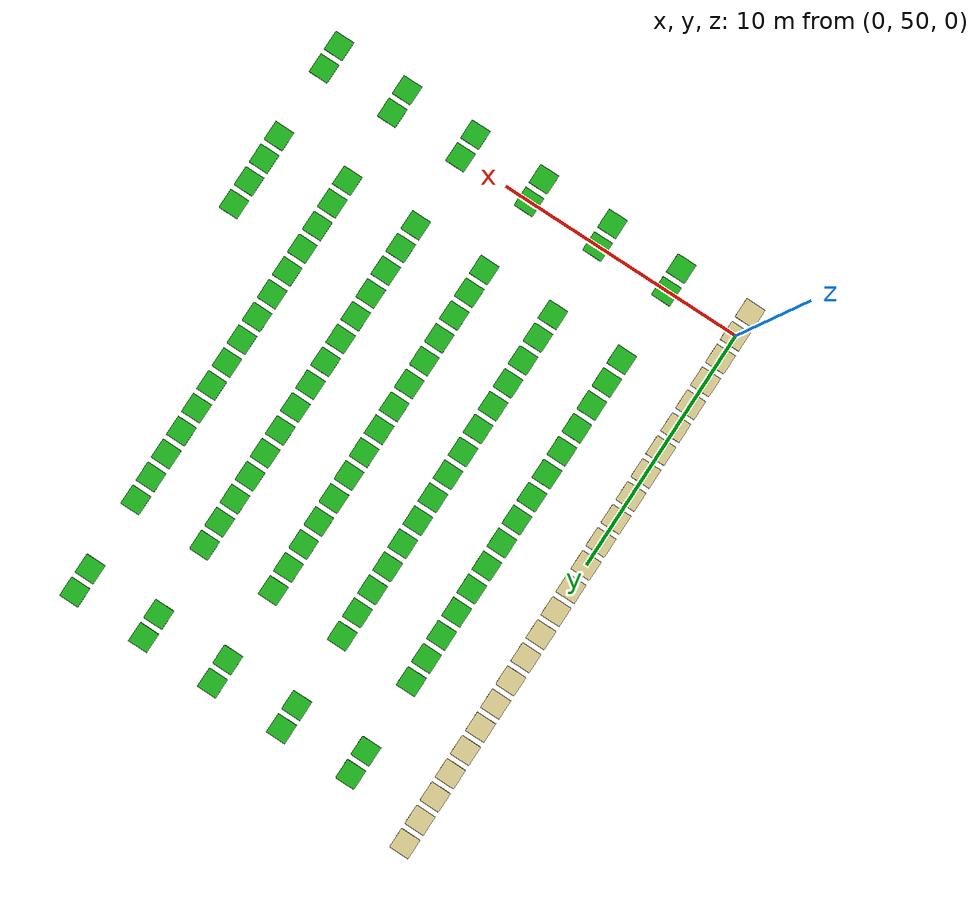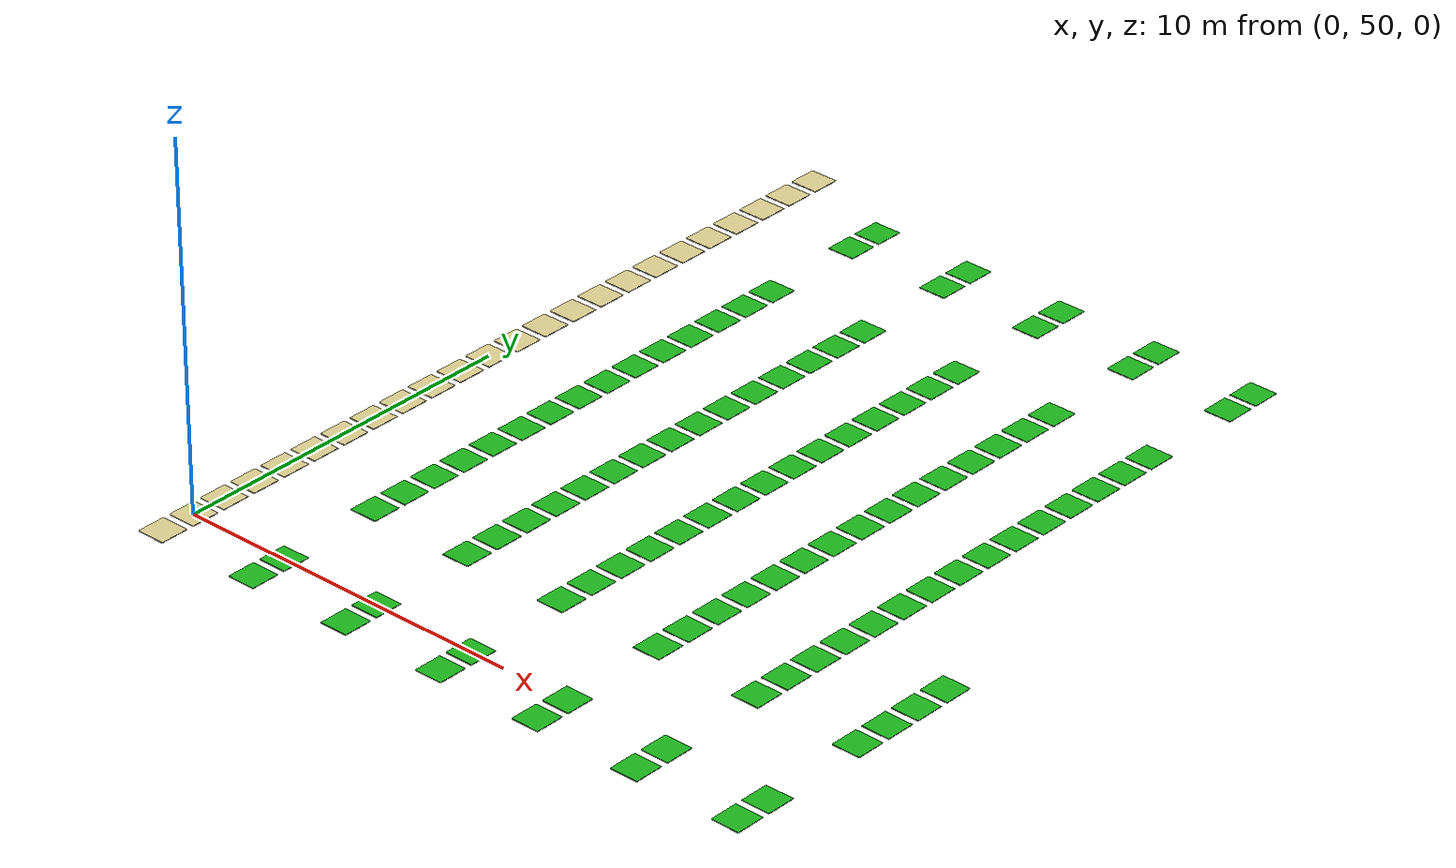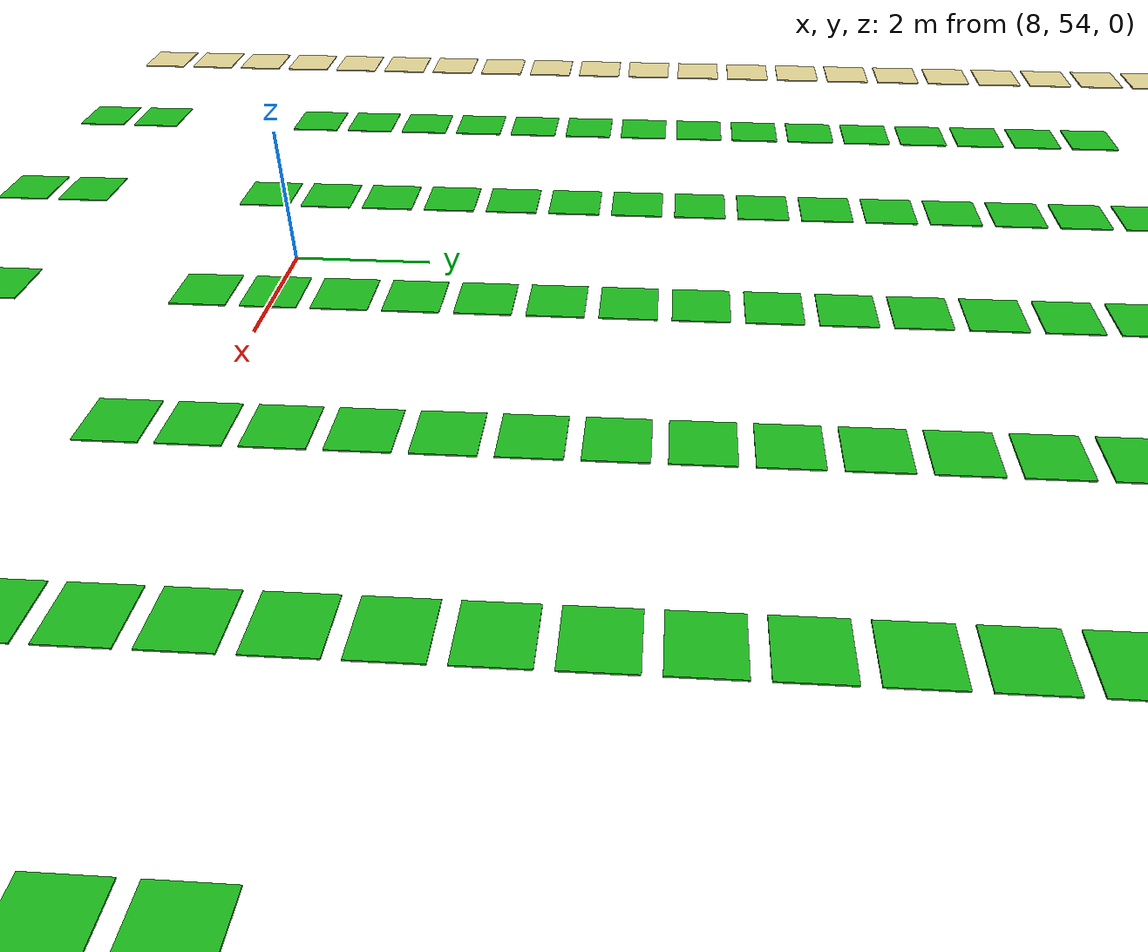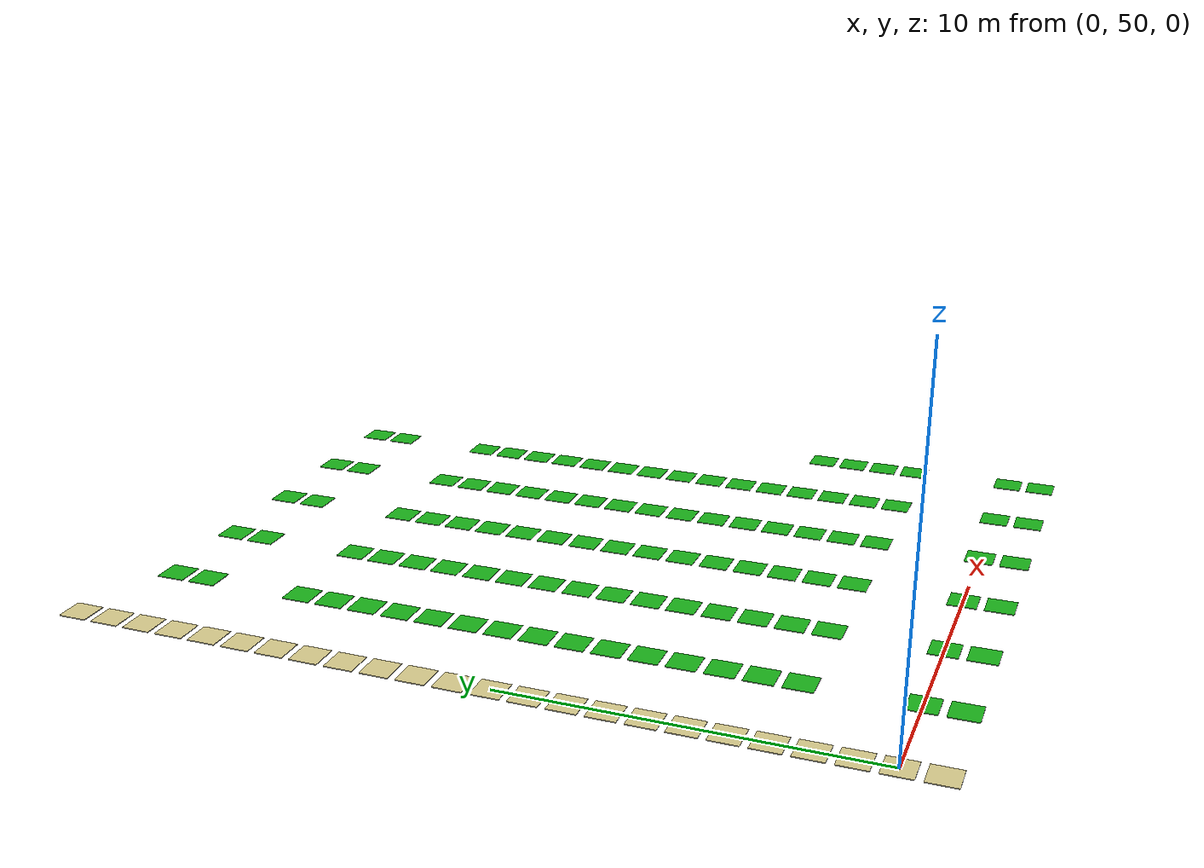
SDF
<sdf version="1.10">
 <world name="my_map">
  <model name="staging_059">
   <static>true</static>
   <pose>0.0
        72.0
        0.02
        0 0 0</pose>
   <link name="link">
    <visual name="visual">
     <geometry><box><size>0.8
                0.8
                0.02</size></box></geometry>
     <material><ambient>0.85 0.80 0.55 1</ambient><diffuse>0.85 0.80 0.55 1</diffuse></material>
    </visual>
   </link>
  </model>
  <model name="staging_061">
   <static>true</static>
   <pose>0.0
        71.0
        0.02
        0 0 0</pose>
   <link name="link">
    <visual name="visual">
     <geometry><box><size>0.8
                0.8
                0.02</size></box></geometry>
     <material><ambient>0.85 0.80 0.55 1</ambient><diffuse>0.85 0.80 0.55 1</diffuse></material>
    </visual>
   </link>
  </model>
  <model name="shelf_701">
   <static>true</static>
   <pose>3.0
        71.0
        0.02
        0 0 0</pose>
   <link name="link">
    <visual name="visual">
     <geometry><box><size>0.8
                0.8
                0.02</size></box></geometry>
     <material><ambient>0.10 0.70 0.10 1</ambient><diffuse>0.10 0.70 0.10 1</diffuse></material>
    </visual>
   </link>
  </model>
  <model name="shelf_702">
   <static>true</static>
   <pose>6.0
        71.0
        0.02
        0 0 0</pose>
   <link name="link">
    <visual name="visual">
     <geometry><box><size>0.8
                0.8
                0.02</size></box></geometry>
     <material><ambient>0.10 0.70 0.10 1</ambient><diffuse>0.10 0.70 0.10 1</diffuse></material>
    </visual>
   </link>
  </model>
  <model name="shelf_703">
   <static>true</static>
   <pose>9.0
        71.0
        0.02
        0 0 0</pose>
   <link name="link">
    <visual name="visual">
     <geometry><box><size>0.8
                0.8
                0.02</size></box></geometry>
     <material><ambient>0.10 0.70 0.10 1</ambient><diffuse>0.10 0.70 0.10 1</diffuse></material>
    </visual>
   </link>
  </model>
  <model name="shelf_704">
   <static>true</static>
   <pose>12.0
        71.0
        0.02
        0 0 0</pose>
   <link name="link">
    <visual name="visual">
     <geometry><box><size>0.8
                0.8
                0.02</size></box></geometry>
     <material><ambient>0.10 0.70 0.10 1</ambient><diffuse>0.10 0.70 0.10 1</diffuse></material>
    </visual>
   </link>
  </model>
  <model name="shelf_705">
   <static>true</static>
   <pose>15.0
        71.0
        0.02
        0 0 0</pose>
   <link name="link">
    <visual name="visual">
     <geometry><box><size>0.8
                0.8
                0.02</size></box></geometry>
     <material><ambient>0.10 0.70 0.10 1</ambient><diffuse>0.10 0.70 0.10 1</diffuse></material>
    </visual>
   </link>
  </model>
  <model name="staging_063">
   <static>true</static>
   <pose>0.0
        70.0
        0.02
        0 0 0</pose>
   <link name="link">
    <visual name="visual">
     <geometry><box><size>0.8
                0.8
                0.02</size></box></geometry>
     <material><ambient>0.85 0.80 0.55 1</ambient><diffuse>0.85 0.80 0.55 1</diffuse></material>
    </visual>
   </link>
  </model>
  <model name="shelf_726">
   <static>true</static>
   <pose>3.0
        70.0
        0.02
        0 0 0</pose>
   <link name="link">
    <visual name="visual">
     <geometry><box><size>0.8
                0.8
                0.02</size></box></geometry>
     <material><ambient>0.10 0.70 0.10 1</ambient><diffuse>0.10 0.70 0.10 1</diffuse></material>
    </visual>
   </link>
  </model>
  <model name="shelf_727">
   <static>true</static>
   <pose>6.0
        70.0
        0.02
        0 0 0</pose>
   <link name="link">
    <visual name="visual">
     <geometry><box><size>0.8
                0.8
                0.02</size></box></geometry>
     <material><ambient>0.10 0.70 0.10 1</ambient><diffuse>0.10 0.70 0.10 1</diffuse></material>
    </visual>
   </link>
  </model>
  <model name="shelf_728">
   <static>true</static>
   <pose>9.0
        70.0
        0.02
        0 0 0</pose>
   <link name="link">
    <visual name="visual">
     <geometry><box><size>0.8
                0.8
                0.02</size></box></geometry>
     <material><ambient>0.10 0.70 0.10 1</ambient><diffuse>0.10 0.70 0.10 1</diffuse></material>
    </visual>
   </link>
  </model>
  <model name="shelf_729">
   <static>true</static>
   <pose>12.0
        70.0
        0.02
        0 0 0</pose>
   <link name="link">
    <visual name="visual">
     <geometry><box><size>0.8
                0.8
                0.02</size></box></geometry>
     <material><ambient>0.10 0.70 0.10 1</ambient><diffuse>0.10 0.70 0.10 1</diffuse></material>
    </visual>
   </link>
  </model>
  <model name="shelf_730">
   <static>true</static>
   <pose>15.0
        70.0
        0.02
        0 0 0</pose>
   <link name="link">
    <visual name="visual">
     <geometry><box><size>0.8
                0.8
                0.02</size></box></geometry>
     <material><ambient>0.10 0.70 0.10 1</ambient><diffuse>0.10 0.70 0.10 1</diffuse></material>
    </visual>
   </link>
  </model>
  <model name="staging_065">
   <static>true</static>
   <pose>0.0
        69.0
        0.02
        0 0 0</pose>
   <link name="link">
    <visual name="visual">
     <geometry><box><size>0.8
                0.8
                0.02</size></box></geometry>
     <material><ambient>0.85 0.80 0.55 1</ambient><diffuse>0.85 0.80 0.55 1</diffuse></material>
    </visual>
   </link>
  </model>
  <model name="staging_067">
   <static>true</static>
   <pose>0.0
        68.0
        0.02
        0 0 0</pose>
   <link name="link">
    <visual name="visual">
     <geometry><box><size>0.8
                0.8
                0.02</size></box></geometry>
     <material><ambient>0.85 0.80 0.55 1</ambient><diffuse>0.85 0.80 0.55 1</diffuse></material>
    </visual>
   </link>
  </model>
  <model name="staging_069">
   <static>true</static>
   <pose>0.0
        67.0
        0.02
        0 0 0</pose>
   <link name="link">
    <visual name="visual">
     <geometry><box><size>0.8
                0.8
                0.02</size></box></geometry>
     <material><ambient>0.85 0.80 0.55 1</ambient><diffuse>0.85 0.80 0.55 1</diffuse></material>
    </visual>
   </link>
  </model>
  <model name="shelf_751">
   <static>true</static>
   <pose>3.0
        67.0
        0.02
        0 0 0</pose>
   <link name="link">
    <visual name="visual">
     <geometry><box><size>0.8
                0.8
                0.02</size></box></geometry>
     <material><ambient>0.10 0.70 0.10 1</ambient><diffuse>0.10 0.70 0.10 1</diffuse></material>
    </visual>
   </link>
  </model>
  <model name="shelf_752">
   <static>true</static>
   <pose>6.0
        67.0
        0.02
        0 0 0</pose>
   <link name="link">
    <visual name="visual">
     <geometry><box><size>0.8
                0.8
                0.02</size></box></geometry>
     <material><ambient>0.10 0.70 0.10 1</ambient><diffuse>0.10 0.70 0.10 1</diffuse></material>
    </visual>
   </link>
  </model>
  <model name="shelf_753">
   <static>true</static>
   <pose>9.0
        67.0
        0.02
        0 0 0</pose>
   <link name="link">
    <visual name="visual">
     <geometry><box><size>0.8
                0.8
                0.02</size></box></geometry>
     <material><ambient>0.10 0.70 0.10 1</ambient><diffuse>0.10 0.70 0.10 1</diffuse></material>
    </visual>
   </link>
  </model>
  <model name="shelf_754">
   <static>true</static>
   <pose>12.0
        67.0
        0.02
        0 0 0</pose>
   <link name="link">
    <visual name="visual">
     <geometry><box><size>0.8
                0.8
                0.02</size></box></geometry>
     <material><ambient>0.10 0.70 0.10 1</ambient><diffuse>0.10 0.70 0.10 1</diffuse></material>
    </visual>
   </link>
  </model>
  <model name="shelf_755">
   <static>true</static>
   <pose>15.0
        67.0
        0.02
        0 0 0</pose>
   <link name="link">
    <visual name="visual">
     <geometry><box><size>0.8
                0.8
                0.02</size></box></geometry>
     <material><ambient>0.10 0.70 0.10 1</ambient><diffuse>0.10 0.70 0.10 1</diffuse></material>
    </visual>
   </link>
  </model>
  <model name="staging_071">
   <static>true</static>
   <pose>0.0
        66.0
        0.02
        0 0 0</pose>
   <link name="link">
    <visual name="visual">
     <geometry><box><size>0.8
                0.8
                0.02</size></box></geometry>
     <material><ambient>0.85 0.80 0.55 1</ambient><diffuse>0.85 0.80 0.55 1</diffuse></material>
    </visual>
   </link>
  </model>
  <model name="shelf_776">
   <static>true</static>
   <pose>3.0
        66.0
        0.02
        0 0 0</pose>
   <link name="link">
    <visual name="visual">
     <geometry><box><size>0.8
                0.8
                0.02</size></box></geometry>
     <material><ambient>0.10 0.70 0.10 1</ambient><diffuse>0.10 0.70 0.10 1</diffuse></material>
    </visual>
   </link>
  </model>
  <model name="shelf_777">
   <static>true</static>
   <pose>6.0
        66.0
        0.02
        0 0 0</pose>
   <link name="link">
    <visual name="visual">
     <geometry><box><size>0.8
                0.8
                0.02</size></box></geometry>
     <material><ambient>0.10 0.70 0.10 1</ambient><diffuse>0.10 0.70 0.10 1</diffuse></material>
    </visual>
   </link>
  </model>
  <model name="shelf_778">
   <static>true</static>
   <pose>9.0
        66.0
        0.02
        0 0 0</pose>
   <link name="link">
    <visual name="visual">
     <geometry><box><size>0.8
                0.8
                0.02</size></box></geometry>
     <material><ambient>0.10 0.70 0.10 1</ambient><diffuse>0.10 0.70 0.10 1</diffuse></material>
    </visual>
   </link>
  </model>
  <model name="shelf_779">
   <static>true</static>
   <pose>12.0
        66.0
        0.02
        0 0 0</pose>
   <link name="link">
    <visual name="visual">
     <geometry><box><size>0.8
                0.8
                0.02</size></box></geometry>
     <material><ambient>0.10 0.70 0.10 1</ambient><diffuse>0.10 0.70 0.10 1</diffuse></material>
    </visual>
   </link>
  </model>
  <model name="shelf_780">
   <static>true</static>
   <pose>15.0
        66.0
        0.02
        0 0 0</pose>
   <link name="link">
    <visual name="visual">
     <geometry><box><size>0.8
                0.8
                0.02</size></box></geometry>
     <material><ambient>0.10 0.70 0.10 1</ambient><diffuse>0.10 0.70 0.10 1</diffuse></material>
    </visual>
   </link>
  </model>
  <model name="staging_073">
   <static>true</static>
   <pose>0.0
        65.0
        0.02
        0 0 0</pose>
   <link name="link">
    <visual name="visual">
     <geometry><box><size>0.8
                0.8
                0.02</size></box></geometry>
     <material><ambient>0.85 0.80 0.55 1</ambient><diffuse>0.85 0.80 0.55 1</diffuse></material>
    </visual>
   </link>
  </model>
  <model name="shelf_801">
   <static>true</static>
   <pose>3.0
        65.0
        0.02
        0 0 0</pose>
   <link name="link">
    <visual name="visual">
     <geometry><box><size>0.8
                0.8
                0.02</size></box></geometry>
     <material><ambient>0.10 0.70 0.10 1</ambient><diffuse>0.10 0.70 0.10 1</diffuse></material>
    </visual>
   </link>
  </model>
  <model name="shelf_802">
   <static>true</static>
   <pose>6.0
        65.0
        0.02
        0 0 0</pose>
   <link name="link">
    <visual name="visual">
     <geometry><box><size>0.8
                0.8
                0.02</size></box></geometry>
     <material><ambient>0.10 0.70 0.10 1</ambient><diffuse>0.10 0.70 0.10 1</diffuse></material>
    </visual>
   </link>
  </model>
  <model name="shelf_803">
   <static>true</static>
   <pose>9.0
        65.0
        0.02
        0 0 0</pose>
   <link name="link">
    <visual name="visual">
     <geometry><box><size>0.8
                0.8
                0.02</size></box></geometry>
     <material><ambient>0.10 0.70 0.10 1</ambient><diffuse>0.10 0.70 0.10 1</diffuse></material>
    </visual>
   </link>
  </model>
  <model name="shelf_804">
   <static>true</static>
   <pose>12.0
        65.0
        0.02
        0 0 0</pose>
   <link name="link">
    <visual name="visual">
     <geometry><box><size>0.8
                0.8
                0.02</size></box></geometry>
     <material><ambient>0.10 0.70 0.10 1</ambient><diffuse>0.10 0.70 0.10 1</diffuse></material>
    </visual>
   </link>
  </model>
  <model name="shelf_805">
   <static>true</static>
   <pose>15.0
        65.0
        0.02
        0 0 0</pose>
   <link name="link">
    <visual name="visual">
     <geometry><box><size>0.8
                0.8
                0.02</size></box></geometry>
     <material><ambient>0.10 0.70 0.10 1</ambient><diffuse>0.10 0.70 0.10 1</diffuse></material>
    </visual>
   </link>
  </model>
  <model name="staging_075">
   <static>true</static>
   <pose>0.0
        64.0
        0.02
        0 0 0</pose>
   <link name="link">
    <visual name="visual">
     <geometry><box><size>0.8
                0.8
                0.02</size></box></geometry>
     <material><ambient>0.85 0.80 0.55 1</ambient><diffuse>0.85 0.80 0.55 1</diffuse></material>
    </visual>
   </link>
  </model>
  <model name="shelf_826">
   <static>true</static>
   <pose>3.0
        64.0
        0.02
        0 0 0</pose>
   <link name="link">
    <visual name="visual">
     <geometry><box><size>0.8
                0.8
                0.02</size></box></geometry>
     <material><ambient>0.10 0.70 0.10 1</ambient><diffuse>0.10 0.70 0.10 1</diffuse></material>
    </visual>
   </link>
  </model>
  <model name="shelf_827">
   <static>true</static>
   <pose>6.0
        64.0
        0.02
        0 0 0</pose>
   <link name="link">
    <visual name="visual">
     <geometry><box><size>0.8
                0.8
                0.02</size></box></geometry>
     <material><ambient>0.10 0.70 0.10 1</ambient><diffuse>0.10 0.70 0.10 1</diffuse></material>
    </visual>
   </link>
  </model>
  <model name="shelf_828">
   <static>true</static>
   <pose>9.0
        64.0
        0.02
        0 0 0</pose>
   <link name="link">
    <visual name="visual">
     <geometry><box><size>0.8
                0.8
                0.02</size></box></geometry>
     <material><ambient>0.10 0.70 0.10 1</ambient><diffuse>0.10 0.70 0.10 1</diffuse></material>
    </visual>
   </link>
  </model>
  <model name="shelf_829">
   <static>true</static>
   <pose>12.0
        64.0
        0.02
        0 0 0</pose>
   <link name="link">
    <visual name="visual">
     <geometry><box><size>0.8
                0.8
                0.02</size></box></geometry>
     <material><ambient>0.10 0.70 0.10 1</ambient><diffuse>0.10 0.70 0.10 1</diffuse></material>
    </visual>
   </link>
  </model>
  <model name="shelf_830">
   <static>true</static>
   <pose>15.0
        64.0
        0.02
        0 0 0</pose>
   <link name="link">
    <visual name="visual">
     <geometry><box><size>0.8
                0.8
                0.02</size></box></geometry>
     <material><ambient>0.10 0.70 0.10 1</ambient><diffuse>0.10 0.70 0.10 1</diffuse></material>
    </visual>
   </link>
  </model>
  <model name="staging_077">
   <static>true</static>
   <pose>0.0
        63.0
        0.02
        0 0 0</pose>
   <link name="link">
    <visual name="visual">
     <geometry><box><size>0.8
                0.8
                0.02</size></box></geometry>
     <material><ambient>0.85 0.80 0.55 1</ambient><diffuse>0.85 0.80 0.55 1</diffuse></material>
    </visual>
   </link>
  </model>
  <model name="shelf_851">
   <static>true</static>
   <pose>3.0
        63.0
        0.02
        0 0 0</pose>
   <link name="link">
    <visual name="visual">
     <geometry><box><size>0.8
                0.8
                0.02</size></box></geometry>
     <material><ambient>0.10 0.70 0.10 1</ambient><diffuse>0.10 0.70 0.10 1</diffuse></material>
    </visual>
   </link>
  </model>
  <model name="shelf_852">
   <static>true</static>
   <pose>6.0
        63.0
        0.02
        0 0 0</pose>
   <link name="link">
    <visual name="visual">
     <geometry><box><size>0.8
                0.8
                0.02</size></box></geometry>
     <material><ambient>0.10 0.70 0.10 1</ambient><diffuse>0.10 0.70 0.10 1</diffuse></material>
    </visual>
   </link>
  </model>
  <model name="shelf_853">
   <static>true</static>
   <pose>9.0
        63.0
        0.02
        0 0 0</pose>
   <link name="link">
    <visual name="visual">
     <geometry><box><size>0.8
                0.8
                0.02</size></box></geometry>
     <material><ambient>0.10 0.70 0.10 1</ambient><diffuse>0.10 0.70 0.10 1</diffuse></material>
    </visual>
   </link>
  </model>
  <model name="shelf_854">
   <static>true</static>
   <pose>12.0
        63.0
        0.02
        0 0 0</pose>
   <link name="link">
    <visual name="visual">
     <geometry><box><size>0.8
                0.8
                0.02</size></box></geometry>
     <material><ambient>0.10 0.70 0.10 1</ambient><diffuse>0.10 0.70 0.10 1</diffuse></material>
    </visual>
   </link>
  </model>
  <model name="shelf_855">
   <static>true</static>
   <pose>15.0
        63.0
        0.02
        0 0 0</pose>
   <link name="link">
    <visual name="visual">
     <geometry><box><size>0.8
                0.8
                0.02</size></box></geometry>
     <material><ambient>0.10 0.70 0.10 1</ambient><diffuse>0.10 0.70 0.10 1</diffuse></material>
    </visual>
   </link>
  </model>
  <model name="staging_079">
   <static>true</static>
   <pose>0.0
        62.0
        0.02
        0 0 0</pose>
   <link name="link">
    <visual name="visual">
     <geometry><box><size>0.8
                0.8
                0.02</size></box></geometry>
     <material><ambient>0.85 0.80 0.55 1</ambient><diffuse>0.85 0.80 0.55 1</diffuse></material>
    </visual>
   </link>
  </model>
  <model name="shelf_876">
   <static>true</static>
   <pose>3.0
        62.0
        0.02
        0 0 0</pose>
   <link name="link">
    <visual name="visual">
     <geometry><box><size>0.8
                0.8
                0.02</size></box></geometry>
     <material><ambient>0.10 0.70 0.10 1</ambient><diffuse>0.10 0.70 0.10 1</diffuse></material>
    </visual>
   </link>
  </model>
  <model name="shelf_877">
   <static>true</static>
   <pose>6.0
        62.0
        0.02
        0 0 0</pose>
   <link name="link">
    <visual name="visual">
     <geometry><box><size>0.8
                0.8
                0.02</size></box></geometry>
     <material><ambient>0.10 0.70 0.10 1</ambient><diffuse>0.10 0.70 0.10 1</diffuse></material>
    </visual>
   </link>
  </model>
  <model name="shelf_878">
   <static>true</static>
   <pose>9.0
        62.0
        0.02
        0 0 0</pose>
   <link name="link">
    <visual name="visual">
     <geometry><box><size>0.8
                0.8
                0.02</size></box></geometry>
     <material><ambient>0.10 0.70 0.10 1</ambient><diffuse>0.10 0.70 0.10 1</diffuse></material>
    </visual>
   </link>
  </model>
  <model name="shelf_879">
   <static>true</static>
   <pose>12.0
        62.0
        0.02
        0 0 0</pose>
   <link name="link">
    <visual name="visual">
     <geometry><box><size>0.8
                0.8
                0.02</size></box></geometry>
     <material><ambient>0.10 0.70 0.10 1</ambient><diffuse>0.10 0.70 0.10 1</diffuse></material>
    </visual>
   </link>
  </model>
  <model name="shelf_880">
   <static>true</static>
   <pose>15.0
        62.0
        0.02
        0 0 0</pose>
   <link name="link">
    <visual name="visual">
     <geometry><box><size>0.8
                0.8
                0.02</size></box></geometry>
     <material><ambient>0.10 0.70 0.10 1</ambient><diffuse>0.10 0.70 0.10 1</diffuse></material>
    </visual>
   </link>
  </model>
  <model name="staging_081">
   <static>true</static>
   <pose>0.0
        61.0
        0.02
        0 0 0</pose>
   <link name="link">
    <visual name="visual">
     <geometry><box><size>0.8
                0.8
                0.02</size></box></geometry>
     <material><ambient>0.85 0.80 0.55 1</ambient><diffuse>0.85 0.80 0.55 1</diffuse></material>
    </visual>
   </link>
  </model>
  <model name="shelf_901">
   <static>true</static>
   <pose>3.0
        61.0
        0.02
        0 0 0</pose>
   <link name="link">
    <visual name="visual">
     <geometry><box><size>0.8
                0.8
                0.02</size></box></geometry>
     <material><ambient>0.10 0.70 0.10 1</ambient><diffuse>0.10 0.70 0.10 1</diffuse></material>
    </visual>
   </link>
  </model>
  <model name="shelf_902">
   <static>true</static>
   <pose>6.0
        61.0
        0.02
        0 0 0</pose>
   <link name="link">
    <visual name="visual">
     <geometry><box><size>0.8
                0.8
                0.02</size></box></geometry>
     <material><ambient>0.10 0.70 0.10 1</ambient><diffuse>0.10 0.70 0.10 1</diffuse></material>
    </visual>
   </link>
  </model>
  <model name="shelf_903">
   <static>true</static>
   <pose>9.0
        61.0
        0.02
        0 0 0</pose>
   <link name="link">
    <visual name="visual">
     <geometry><box><size>0.8
                0.8
                0.02</size></box></geometry>
     <material><ambient>0.10 0.70 0.10 1</ambient><diffuse>0.10 0.70 0.10 1</diffuse></material>
    </visual>
   </link>
  </model>
  <model name="shelf_904">
   <static>true</static>
   <pose>12.0
        61.0
        0.02
        0 0 0</pose>
   <link name="link">
    <visual name="visual">
     <geometry><box><size>0.8
                0.8
                0.02</size></box></geometry>
     <material><ambient>0.10 0.70 0.10 1</ambient><diffuse>0.10 0.70 0.10 1</diffuse></material>
    </visual>
   </link>
  </model>
  <model name="shelf_905">
   <static>true</static>
   <pose>15.0
        61.0
        0.02
        0 0 0</pose>
   <link name="link">
    <visual name="visual">
     <geometry><box><size>0.8
                0.8
                0.02</size></box></geometry>
     <material><ambient>0.10 0.70 0.10 1</ambient><diffuse>0.10 0.70 0.10 1</diffuse></material>
    </visual>
   </link>
  </model>
  <model name="staging_083">
   <static>true</static>
   <pose>0.0
        60.0
        0.02
        0 0 0</pose>
   <link name="link">
    <visual name="visual">
     <geometry><box><size>0.8
                0.8
                0.02</size></box></geometry>
     <material><ambient>0.85 0.80 0.55 1</ambient><diffuse>0.85 0.80 0.55 1</diffuse></material>
    </visual>
   </link>
  </model>
  <model name="shelf_926">
   <static>true</static>
   <pose>3.0
        60.0
        0.02
        0 0 0</pose>
   <link name="link">
    <visual name="visual">
     <geometry><box><size>0.8
                0.8
                0.02</size></box></geometry>
     <material><ambient>0.10 0.70 0.10 1</ambient><diffuse>0.10 0.70 0.10 1</diffuse></material>
    </visual>
   </link>
  </model>
  <model name="shelf_927">
   <static>true</static>
   <pose>6.0
        60.0
        0.02
        0 0 0</pose>
   <link name="link">
    <visual name="visual">
     <geometry><box><size>0.8
                0.8
                0.02</size></box></geometry>
     <material><ambient>0.10 0.70 0.10 1</ambient><diffuse>0.10 0.70 0.10 1</diffuse></material>
    </visual>
   </link>
  </model>
  <model name="shelf_928">
   <static>true</static>
   <pose>9.0
        60.0
        0.02
        0 0 0</pose>
   <link name="link">
    <visual name="visual">
     <geometry><box><size>0.8
                0.8
                0.02</size></box></geometry>
     <material><ambient>0.10 0.70 0.10 1</ambient><diffuse>0.10 0.70 0.10 1</diffuse></material>
    </visual>
   </link>
  </model>
  <model name="shelf_929">
   <static>true</static>
   <pose>12.0
        60.0
        0.02
        0 0 0</pose>
   <link name="link">
    <visual name="visual">
     <geometry><box><size>0.8
                0.8
                0.02</size></box></geometry>
     <material><ambient>0.10 0.70 0.10 1</ambient><diffuse>0.10 0.70 0.10 1</diffuse></material>
    </visual>
   </link>
  </model>
  <model name="shelf_930">
   <static>true</static>
   <pose>15.0
        60.0
        0.02
        0 0 0</pose>
   <link name="link">
    <visual name="visual">
     <geometry><box><size>0.8
                0.8
                0.02</size></box></geometry>
     <material><ambient>0.10 0.70 0.10 1</ambient><diffuse>0.10 0.70 0.10 1</diffuse></material>
    </visual>
   </link>
  </model>
  <model name="staging_085">
   <static>true</static>
   <pose>0.0
        59.0
        0.02
        0 0 0</pose>
   <link name="link">
    <visual name="visual">
     <geometry><box><size>0.8
                0.8
                0.02</size></box></geometry>
     <material><ambient>0.85 0.80 0.55 1</ambient><diffuse>0.85 0.80 0.55 1</diffuse></material>
    </visual>
   </link>
  </model>
  <model name="shelf_951">
   <static>true</static>
   <pose>3.0
        59.0
        0.02
        0 0 0</pose>
   <link name="link">
    <visual name="visual">
     <geometry><box><size>0.8
                0.8
                0.02</size></box></geometry>
     <material><ambient>0.10 0.70 0.10 1</ambient><diffuse>0.10 0.70 0.10 1</diffuse></material>
    </visual>
   </link>
  </model>
  <model name="shelf_952">
   <static>true</static>
   <pose>6.0
        59.0
        0.02
        0 0 0</pose>
   <link name="link">
    <visual name="visual">
     <geometry><box><size>0.8
                0.8
                0.02</size></box></geometry>
     <material><ambient>0.10 0.70 0.10 1</ambient><diffuse>0.10 0.70 0.10 1</diffuse></material>
    </visual>
   </link>
  </model>
  <model name="shelf_953">
   <static>true</static>
   <pose>9.0
        59.0
        0.02
        0 0 0</pose>
   <link name="link">
    <visual name="visual">
     <geometry><box><size>0.8
                0.8
                0.02</size></box></geometry>
     <material><ambient>0.10 0.70 0.10 1</ambient><diffuse>0.10 0.70 0.10 1</diffuse></material>
    </visual>
   </link>
  </model>
  <model name="shelf_954">
   <static>true</static>
   <pose>12.0
        59.0
        0.02
        0 0 0</pose>
   <link name="link">
    <visual name="visual">
     <geometry><box><size>0.8
                0.8
                0.02</size></box></geometry>
     <material><ambient>0.10 0.70 0.10 1</ambient><diffuse>0.10 0.70 0.10 1</diffuse></material>
    </visual>
   </link>
  </model>
  <model name="shelf_955">
   <static>true</static>
   <pose>15.0
        59.0
        0.02
        0 0 0</pose>
   <link name="link">
    <visual name="visual">
     <geometry><box><size>0.8
                0.8
                0.02</size></box></geometry>
     <material><ambient>0.10 0.70 0.10 1</ambient><diffuse>0.10 0.70 0.10 1</diffuse></material>
    </visual>
   </link>
  </model>
  <model name="staging_087">
   <static>true</static>
   <pose>0.0
        58.0
        0.02
        0 0 0</pose>
   <link name="link">
    <visual name="visual">
     <geometry><box><size>0.8
                0.8
                0.02</size></box></geometry>
     <material><ambient>0.85 0.80 0.55 1</ambient><diffuse>0.85 0.80 0.55 1</diffuse></material>
    </visual>
   </link>
  </model>
  <model name="shelf_976">
   <static>true</static>
   <pose>3.0
        58.0
        0.02
        0 0 0</pose>
   <link name="link">
    <visual name="visual">
     <geometry><box><size>0.8
                0.8
                0.02</size></box></geometry>
     <material><ambient>0.10 0.70 0.10 1</ambient><diffuse>0.10 0.70 0.10 1</diffuse></material>
    </visual>
   </link>
  </model>
  <model name="shelf_977">
   <static>true</static>
   <pose>6.0
        58.0
        0.02
        0 0 0</pose>
   <link name="link">
    <visual name="visual">
     <geometry><box><size>0.8
                0.8
                0.02</size></box></geometry>
     <material><ambient>0.10 0.70 0.10 1</ambient><diffuse>0.10 0.70 0.10 1</diffuse></material>
    </visual>
   </link>
  </model>
  <model name="shelf_978">
   <static>true</static>
   <pose>9.0
        58.0
        0.02
        0 0 0</pose>
   <link name="link">
    <visual name="visual">
     <geometry><box><size>0.8
                0.8
                0.02</size></box></geometry>
     <material><ambient>0.10 0.70 0.10 1</ambient><diffuse>0.10 0.70 0.10 1</diffuse></material>
    </visual>
   </link>
  </model>
  <model name="shelf_979">
   <static>true</static>
   <pose>12.0
        58.0
        0.02
        0 0 0</pose>
   <link name="link">
    <visual name="visual">
     <geometry><box><size>0.8
                0.8
                0.02</size></box></geometry>
     <material><ambient>0.10 0.70 0.10 1</ambient><diffuse>0.10 0.70 0.10 1</diffuse></material>
    </visual>
   </link>
  </model>
  <model name="shelf_980">
   <static>true</static>
   <pose>15.0
        58.0
        0.02
        0 0 0</pose>
   <link name="link">
    <visual name="visual">
     <geometry><box><size>0.8
                0.8
                0.02</size></box></geometry>
     <material><ambient>0.10 0.70 0.10 1</ambient><diffuse>0.10 0.70 0.10 1</diffuse></material>
    </visual>
   </link>
  </model>
  <model name="staging_089">
   <static>true</static>
   <pose>0.0
        57.0
        0.02
        0 0 0</pose>
   <link name="link">
    <visual name="visual">
     <geometry><box><size>0.8
                0.8
                0.02</size></box></geometry>
     <material><ambient>0.85 0.80 0.55 1</ambient><diffuse>0.85 0.80 0.55 1</diffuse></material>
    </visual>
   </link>
  </model>
  <model name="shelf_1001">
   <static>true</static>
   <pose>3.0
        57.0
        0.02
        0 0 0</pose>
   <link name="link">
    <visual name="visual">
     <geometry><box><size>0.8
                0.8
                0.02</size></box></geometry>
     <material><ambient>0.10 0.70 0.10 1</ambient><diffuse>0.10 0.70 0.10 1</diffuse></material>
    </visual>
   </link>
  </model>
  <model name="shelf_1002">
   <static>true</static>
   <pose>6.0
        57.0
        0.02
        0 0 0</pose>
   <link name="link">
    <visual name="visual">
     <geometry><box><size>0.8
                0.8
                0.02</size></box></geometry>
     <material><ambient>0.10 0.70 0.10 1</ambient><diffuse>0.10 0.70 0.10 1</diffuse></material>
    </visual>
   </link>
  </model>
  <model name="shelf_1003">
   <static>true</static>
   <pose>9.0
        57.0
        0.02
        0 0 0</pose>
   <link name="link">
    <visual name="visual">
     <geometry><box><size>0.8
                0.8
                0.02</size></box></geometry>
     <material><ambient>0.10 0.70 0.10 1</ambient><diffuse>0.10 0.70 0.10 1</diffuse></material>
    </visual>
   </link>
  </model>
  <model name="shelf_1004">
   <static>true</static>
   <pose>12.0
        57.0
        0.02
        0 0 0</pose>
   <link name="link">
    <visual name="visual">
     <geometry><box><size>0.8
                0.8
                0.02</size></box></geometry>
     <material><ambient>0.10 0.70 0.10 1</ambient><diffuse>0.10 0.70 0.10 1</diffuse></material>
    </visual>
   </link>
  </model>
  <model name="shelf_1005">
   <static>true</static>
   <pose>15.0
        57.0
        0.02
        0 0 0</pose>
   <link name="link">
    <visual name="visual">
     <geometry><box><size>0.8
                0.8
                0.02</size></box></geometry>
     <material><ambient>0.10 0.70 0.10 1</ambient><diffuse>0.10 0.70 0.10 1</diffuse></material>
    </visual>
   </link>
  </model>
  <model name="staging_091">
   <static>true</static>
   <pose>0.0
        56.0
        0.02
        0 0 0</pose>
   <link name="link">
    <visual name="visual">
     <geometry><box><size>0.8
                0.8
                0.02</size></box></geometry>
     <material><ambient>0.85 0.80 0.55 1</ambient><diffuse>0.85 0.80 0.55 1</diffuse></material>
    </visual>
   </link>
  </model>
  <model name="shelf_1026">
   <static>true</static>
   <pose>3.0
        56.0
        0.02
        0 0 0</pose>
   <link name="link">
    <visual name="visual">
     <geometry><box><size>0.8
                0.8
                0.02</size></box></geometry>
     <material><ambient>0.10 0.70 0.10 1</ambient><diffuse>0.10 0.70 0.10 1</diffuse></material>
    </visual>
   </link>
  </model>
  <model name="shelf_1027">
   <static>true</static>
   <pose>6.0
        56.0
        0.02
        0 0 0</pose>
   <link name="link">
    <visual name="visual">
     <geometry><box><size>0.8
                0.8
                0.02</size></box></geometry>
     <material><ambient>0.10 0.70 0.10 1</ambient><diffuse>0.10 0.70 0.10 1</diffuse></material>
    </visual>
   </link>
  </model>
  <model name="shelf_1028">
   <static>true</static>
   <pose>9.0
        56.0
        0.02
        0 0 0</pose>
   <link name="link">
    <visual name="visual">
     <geometry><box><size>0.8
                0.8
                0.02</size></box></geometry>
     <material><ambient>0.10 0.70 0.10 1</ambient><diffuse>0.10 0.70 0.10 1</diffuse></material>
    </visual>
   </link>
  </model>
  <model name="shelf_1029">
   <static>true</static>
   <pose>12.0
        56.0
        0.02
        0 0 0</pose>
   <link name="link">
    <visual name="visual">
     <geometry><box><size>0.8
                0.8
                0.02</size></box></geometry>
     <material><ambient>0.10 0.70 0.10 1</ambient><diffuse>0.10 0.70 0.10 1</diffuse></material>
    </visual>
   </link>
  </model>
  <model name="shelf_1030">
   <static>true</static>
   <pose>15.0
        56.0
        0.02
        0 0 0</pose>
   <link name="link">
    <visual name="visual">
     <geometry><box><size>0.8
                0.8
                0.02</size></box></geometry>
     <material><ambient>0.10 0.70 0.10 1</ambient><diffuse>0.10 0.70 0.10 1</diffuse></material>
    </visual>
   </link>
  </model>
  <model name="shelf_1031">
   <static>true</static>
   <pose>18.0
        56.0
        0.02
        0 0 0</pose>
   <link name="link">
    <visual name="visual">
     <geometry><box><size>0.8
                0.8
                0.02</size></box></geometry>
     <material><ambient>0.10 0.70 0.10 1</ambient><diffuse>0.10 0.70 0.10 1</diffuse></material>
    </visual>
   </link>
  </model>
  <model name="staging_093">
   <static>true</static>
   <pose>0.0
        55.0
        0.02
        0 0 0</pose>
   <link name="link">
    <visual name="visual">
     <geometry><box><size>0.8
                0.8
                0.02</size></box></geometry>
     <material><ambient>0.85 0.80 0.55 1</ambient><diffuse>0.85 0.80 0.55 1</diffuse></material>
    </visual>
   </link>
  </model>
  <model name="shelf_1051">
   <static>true</static>
   <pose>3.0
        55.0
        0.02
        0 0 0</pose>
   <link name="link">
    <visual name="visual">
     <geometry><box><size>0.8
                0.8
                0.02</size></box></geometry>
     <material><ambient>0.10 0.70 0.10 1</ambient><diffuse>0.10 0.70 0.10 1</diffuse></material>
    </visual>
   </link>
  </model>
  <model name="shelf_1052">
   <static>true</static>
   <pose>6.0
        55.0
        0.02
        0 0 0</pose>
   <link name="link">
    <visual name="visual">
     <geometry><box><size>0.8
                0.8
                0.02</size></box></geometry>
     <material><ambient>0.10 0.70 0.10 1</ambient><diffuse>0.10 0.70 0.10 1</diffuse></material>
    </visual>
   </link>
  </model>
  <model name="shelf_1053">
   <static>true</static>
   <pose>9.0
        55.0
        0.02
        0 0 0</pose>
   <link name="link">
    <visual name="visual">
     <geometry><box><size>0.8
                0.8
                0.02</size></box></geometry>
     <material><ambient>0.10 0.70 0.10 1</ambient><diffuse>0.10 0.70 0.10 1</diffuse></material>
    </visual>
   </link>
  </model>
  <model name="shelf_1054">
   <static>true</static>
   <pose>12.0
        55.0
        0.02
        0 0 0</pose>
   <link name="link">
    <visual name="visual">
     <geometry><box><size>0.8
                0.8
                0.02</size></box></geometry>
     <material><ambient>0.10 0.70 0.10 1</ambient><diffuse>0.10 0.70 0.10 1</diffuse></material>
    </visual>
   </link>
  </model>
  <model name="shelf_1055">
   <static>true</static>
   <pose>15.0
        55.0
        0.02
        0 0 0</pose>
   <link name="link">
    <visual name="visual">
     <geometry><box><size>0.8
                0.8
                0.02</size></box></geometry>
     <material><ambient>0.10 0.70 0.10 1</ambient><diffuse>0.10 0.70 0.10 1</diffuse></material>
    </visual>
   </link>
  </model>
  <model name="shelf_1056">
   <static>true</static>
   <pose>18.0
        55.0
        0.02
        0 0 0</pose>
   <link name="link">
    <visual name="visual">
     <geometry><box><size>0.8
                0.8
                0.02</size></box></geometry>
     <material><ambient>0.10 0.70 0.10 1</ambient><diffuse>0.10 0.70 0.10 1</diffuse></material>
    </visual>
   </link>
  </model>
  <model name="staging_095">
   <static>true</static>
   <pose>0.0
        54.0
        0.02
        0 0 0</pose>
   <link name="link">
    <visual name="visual">
     <geometry><box><size>0.8
                0.8
                0.02</size></box></geometry>
     <material><ambient>0.85 0.80 0.55 1</ambient><diffuse>0.85 0.80 0.55 1</diffuse></material>
    </visual>
   </link>
  </model>
  <model name="shelf_1076">
   <static>true</static>
   <pose>3.0
        54.0
        0.02
        0 0 0</pose>
   <link name="link">
    <visual name="visual">
     <geometry><box><size>0.8
                0.8
                0.02</size></box></geometry>
     <material><ambient>0.10 0.70 0.10 1</ambient><diffuse>0.10 0.70 0.10 1</diffuse></material>
    </visual>
   </link>
  </model>
  <model name="shelf_1077">
   <static>true</static>
   <pose>6.0
        54.0
        0.02
        0 0 0</pose>
   <link name="link">
    <visual name="visual">
     <geometry><box><size>0.8
                0.8
                0.02</size></box></geometry>
     <material><ambient>0.10 0.70 0.10 1</ambient><diffuse>0.10 0.70 0.10 1</diffuse></material>
    </visual>
   </link>
  </model>
  <model name="shelf_1078">
   <static>true</static>
   <pose>9.0
        54.0
        0.02
        0 0 0</pose>
   <link name="link">
    <visual name="visual">
     <geometry><box><size>0.8
                0.8
                0.02</size></box></geometry>
     <material><ambient>0.10 0.70 0.10 1</ambient><diffuse>0.10 0.70 0.10 1</diffuse></material>
    </visual>
   </link>
  </model>
  <model name="shelf_1079">
   <static>true</static>
   <pose>12.0
        54.0
        0.02
        0 0 0</pose>
   <link name="link">
    <visual name="visual">
     <geometry><box><size>0.8
                0.8
                0.02</size></box></geometry>
     <material><ambient>0.10 0.70 0.10 1</ambient><diffuse>0.10 0.70 0.10 1</diffuse></material>
    </visual>
   </link>
  </model>
  <model name="shelf_1080">
   <static>true</static>
   <pose>15.0
        54.0
        0.02
        0 0 0</pose>
   <link name="link">
    <visual name="visual">
     <geometry><box><size>0.8
                0.8
                0.02</size></box></geometry>
     <material><ambient>0.10 0.70 0.10 1</ambient><diffuse>0.10 0.70 0.10 1</diffuse></material>
    </visual>
   </link>
  </model>
  <model name="shelf_1081">
   <static>true</static>
   <pose>18.0
        54.0
        0.02
        0 0 0</pose>
   <link name="link">
    <visual name="visual">
     <geometry><box><size>0.8
                0.8
                0.02</size></box></geometry>
     <material><ambient>0.10 0.70 0.10 1</ambient><diffuse>0.10 0.70 0.10 1</diffuse></material>
    </visual>
   </link>
  </model>
  <model name="staging_097">
   <static>true</static>
   <pose>0.0
        53.0
        0.02
        0 0 0</pose>
   <link name="link">
    <visual name="visual">
     <geometry><box><size>0.8
                0.8
                0.02</size></box></geometry>
     <material><ambient>0.85 0.80 0.55 1</ambient><diffuse>0.85 0.80 0.55 1</diffuse></material>
    </visual>
   </link>
  </model>
  <model name="shelf_1101">
   <static>true</static>
   <pose>3.0
        53.0
        0.02
        0 0 0</pose>
   <link name="link">
    <visual name="visual">
     <geometry><box><size>0.8
                0.8
                0.02</size></box></geometry>
     <material><ambient>0.10 0.70 0.10 1</ambient><diffuse>0.10 0.70 0.10 1</diffuse></material>
    </visual>
   </link>
  </model>
  <model name="shelf_1102">
   <static>true</static>
   <pose>6.0
        53.0
        0.02
        0 0 0</pose>
   <link name="link">
    <visual name="visual">
     <geometry><box><size>0.8
                0.8
                0.02</size></box></geometry>
     <material><ambient>0.10 0.70 0.10 1</ambient><diffuse>0.10 0.70 0.10 1</diffuse></material>
    </visual>
   </link>
  </model>
  <model name="shelf_1103">
   <static>true</static>
   <pose>9.0
        53.0
        0.02
        0 0 0</pose>
   <link name="link">
    <visual name="visual">
     <geometry><box><size>0.8
                0.8
                0.02</size></box></geometry>
     <material><ambient>0.10 0.70 0.10 1</ambient><diffuse>0.10 0.70 0.10 1</diffuse></material>
    </visual>
   </link>
  </model>
  <model name="shelf_1104">
   <static>true</static>
   <pose>12.0
        53.0
        0.02
        0 0 0</pose>
   <link name="link">
    <visual name="visual">
     <geometry><box><size>0.8
                0.8
                0.02</size></box></geometry>
     <material><ambient>0.10 0.70 0.10 1</ambient><diffuse>0.10 0.70 0.10 1</diffuse></material>
    </visual>
   </link>
  </model>
  <model name="shelf_1105">
   <static>true</static>
   <pose>15.0
        53.0
        0.02
        0 0 0</pose>
   <link name="link">
    <visual name="visual">
     <geometry><box><size>0.8
                0.8
                0.02</size></box></geometry>
     <material><ambient>0.10 0.70 0.10 1</ambient><diffuse>0.10 0.70 0.10 1</diffuse></material>
    </visual>
   </link>
  </model>
  <model name="shelf_1106">
   <static>true</static>
   <pose>18.0
        53.0
        0.02
        0 0 0</pose>
   <link name="link">
    <visual name="visual">
     <geometry><box><size>0.8
                0.8
                0.02</size></box></geometry>
     <material><ambient>0.10 0.70 0.10 1</ambient><diffuse>0.10 0.70 0.10 1</diffuse></material>
    </visual>
   </link>
  </model>
  <model name="staging_099">
   <static>true</static>
   <pose>0.0
        52.0
        0.02
        0 0 0</pose>
   <link name="link">
    <visual name="visual">
     <geometry><box><size>0.8
                0.8
                0.02</size></box></geometry>
     <material><ambient>0.85 0.80 0.55 1</ambient><diffuse>0.85 0.80 0.55 1</diffuse></material>
    </visual>
   </link>
  </model>
  <model name="staging_101">
   <static>true</static>
   <pose>0.0
        51.0
        0.02
        0 0 0</pose>
   <link name="link">
    <visual name="visual">
     <geometry><box><size>0.8
                0.8
                0.02</size></box></geometry>
     <material><ambient>0.85 0.80 0.55 1</ambient><diffuse>0.85 0.80 0.55 1</diffuse></material>
    </visual>
   </link>
  </model>
  <model name="staging_103">
   <static>true</static>
   <pose>0.0
        50.0
        0.02
        0 0 0</pose>
   <link name="link">
    <visual name="visual">
     <geometry><box><size>0.8
                0.8
                0.02</size></box></geometry>
     <material><ambient>0.85 0.80 0.55 1</ambient><diffuse>0.85 0.80 0.55 1</diffuse></material>
    </visual>
   </link>
  </model>
  <model name="shelf_1126">
   <static>true</static>
   <pose>3.0
        50.0
        0.02
        0 0 0</pose>
   <link name="link">
    <visual name="visual">
     <geometry><box><size>0.8
                0.8
                0.02</size></box></geometry>
     <material><ambient>0.10 0.70 0.10 1</ambient><diffuse>0.10 0.70 0.10 1</diffuse></material>
    </visual>
   </link>
  </model>
  <model name="shelf_1127">
   <static>true</static>
   <pose>6.0
        50.0
        0.02
        0 0 0</pose>
   <link name="link">
    <visual name="visual">
     <geometry><box><size>0.8
                0.8
                0.02</size></box></geometry>
     <material><ambient>0.10 0.70 0.10 1</ambient><diffuse>0.10 0.70 0.10 1</diffuse></material>
    </visual>
   </link>
  </model>
  <model name="shelf_1128">
   <static>true</static>
   <pose>9.0
        50.0
        0.02
        0 0 0</pose>
   <link name="link">
    <visual name="visual">
     <geometry><box><size>0.8
                0.8
                0.02</size></box></geometry>
     <material><ambient>0.10 0.70 0.10 1</ambient><diffuse>0.10 0.70 0.10 1</diffuse></material>
    </visual>
   </link>
  </model>
  <model name="shelf_1129">
   <static>true</static>
   <pose>12.0
        50.0
        0.02
        0 0 0</pose>
   <link name="link">
    <visual name="visual">
     <geometry><box><size>0.8
                0.8
                0.02</size></box></geometry>
     <material><ambient>0.10 0.70 0.10 1</ambient><diffuse>0.10 0.70 0.10 1</diffuse></material>
    </visual>
   </link>
  </model>
  <model name="shelf_1130">
   <static>true</static>
   <pose>15.0
        50.0
        0.02
        0 0 0</pose>
   <link name="link">
    <visual name="visual">
     <geometry><box><size>0.8
                0.8
                0.02</size></box></geometry>
     <material><ambient>0.10 0.70 0.10 1</ambient><diffuse>0.10 0.70 0.10 1</diffuse></material>
    </visual>
   </link>
  </model>
  <model name="shelf_1131">
   <static>true</static>
   <pose>18.0
        50.0
        0.02
        0 0 0</pose>
   <link name="link">
    <visual name="visual">
     <geometry><box><size>0.8
                0.8
                0.02</size></box></geometry>
     <material><ambient>0.10 0.70 0.10 1</ambient><diffuse>0.10 0.70 0.10 1</diffuse></material>
    </visual>
   </link>
  </model>
  <model name="staging_105">
   <static>true</static>
   <pose>0.0
        49.0
        0.02
        0 0 0</pose>
   <link name="link">
    <visual name="visual">
     <geometry><box><size>0.8
                0.8
                0.02</size></box></geometry>
     <material><ambient>0.85 0.80 0.55 1</ambient><diffuse>0.85 0.80 0.55 1</diffuse></material>
    </visual>
   </link>
  </model>
  <model name="shelf_1151">
   <static>true</static>
   <pose>3.0
        49.0
        0.02
        0 0 0</pose>
   <link name="link">
    <visual name="visual">
     <geometry><box><size>0.8
                0.8
                0.02</size></box></geometry>
     <material><ambient>0.10 0.70 0.10 1</ambient><diffuse>0.10 0.70 0.10 1</diffuse></material>
    </visual>
   </link>
  </model>
  <model name="shelf_1152">
   <static>true</static>
   <pose>6.0
        49.0
        0.02
        0 0 0</pose>
   <link name="link">
    <visual name="visual">
     <geometry><box><size>0.8
                0.8
                0.02</size></box></geometry>
     <material><ambient>0.10 0.70 0.10 1</ambient><diffuse>0.10 0.70 0.10 1</diffuse></material>
    </visual>
   </link>
  </model>
  <model name="shelf_1153">
   <static>true</static>
   <pose>9.0
        49.0
        0.02
        0 0 0</pose>
   <link name="link">
    <visual name="visual">
     <geometry><box><size>0.8
                0.8
                0.02</size></box></geometry>
     <material><ambient>0.10 0.70 0.10 1</ambient><diffuse>0.10 0.70 0.10 1</diffuse></material>
    </visual>
   </link>
  </model>
  <model name="shelf_1154">
   <static>true</static>
   <pose>12.0
        49.0
        0.02
        0 0 0</pose>
   <link name="link">
    <visual name="visual">
     <geometry><box><size>0.8
                0.8
                0.02</size></box></geometry>
     <material><ambient>0.10 0.70 0.10 1</ambient><diffuse>0.10 0.70 0.10 1</diffuse></material>
    </visual>
   </link>
  </model>
  <model name="shelf_1155">
   <static>true</static>
   <pose>15.0
        49.0
        0.02
        0 0 0</pose>
   <link name="link">
    <visual name="visual">
     <geometry><box><size>0.8
                0.8
                0.02</size></box></geometry>
     <material><ambient>0.10 0.70 0.10 1</ambient><diffuse>0.10 0.70 0.10 1</diffuse></material>
    </visual>
   </link>
  </model>
  <model name="shelf_1156">
   <static>true</static>
   <pose>18.0
        49.0
        0.02
        0 0 0</pose>
   <link name="link">
    <visual name="visual">
     <geometry><box><size>0.8
                0.8
                0.02</size></box></geometry>
     <material><ambient>0.10 0.70 0.10 1</ambient><diffuse>0.10 0.70 0.10 1</diffuse></material>
    </visual>
   </link>
  </model>
 </world>
</sdf>
